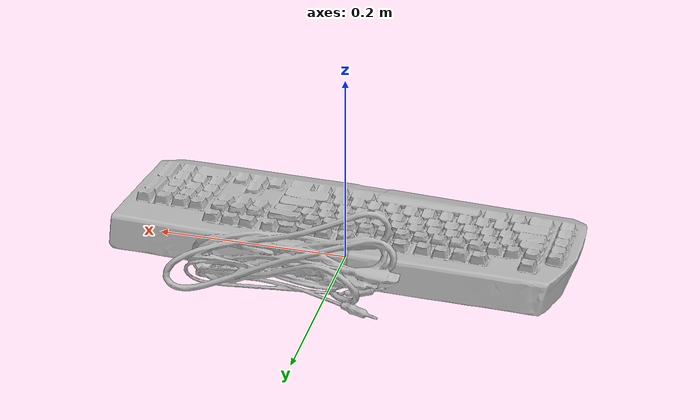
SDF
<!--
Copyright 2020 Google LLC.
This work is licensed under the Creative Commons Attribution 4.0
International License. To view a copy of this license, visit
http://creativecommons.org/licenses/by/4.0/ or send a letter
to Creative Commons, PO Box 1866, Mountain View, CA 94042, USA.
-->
<?xml version="1.0" ?>
<sdf version="1.6">
  <model name="Razer_BlackWidow_Stealth_2014_Keyboard_07VFzIVabgh">
    <link name="link_0">
      <visual name="visual">
        <geometry>
          <mesh>
            <uri>/home/ub20/rsws/src/autonomous_typing/urdf/Razer_BlackWidow/meshes/model.obj</uri>
          </mesh>
        </geometry>
      </visual>
      <collision name="collision_0">
        <geometry>
          <mesh>
            <uri>/home/ub20/rsws/src/autonomous_typing/urdf/Razer_BlackWidow/meshes/model.obj</uri>
          </mesh>
        </geometry>
      </collision>
    </link>
    <joint name="fixed_joint" type="fixed">
      <parent>world</parent>
      <child>link_0</child>
      <pose>0 0 0 0 0 0</pose>
    </joint>
  </model>
</sdf>
